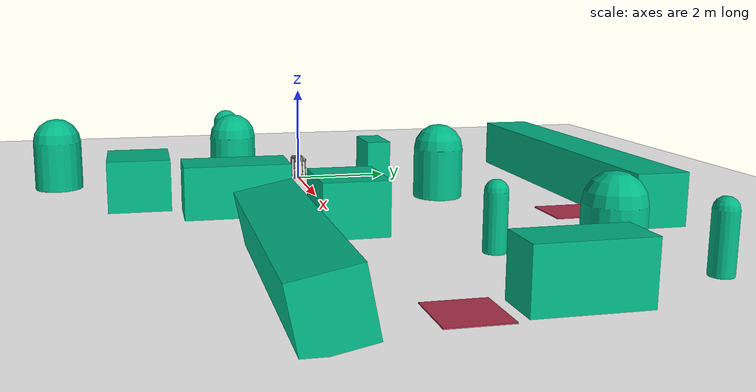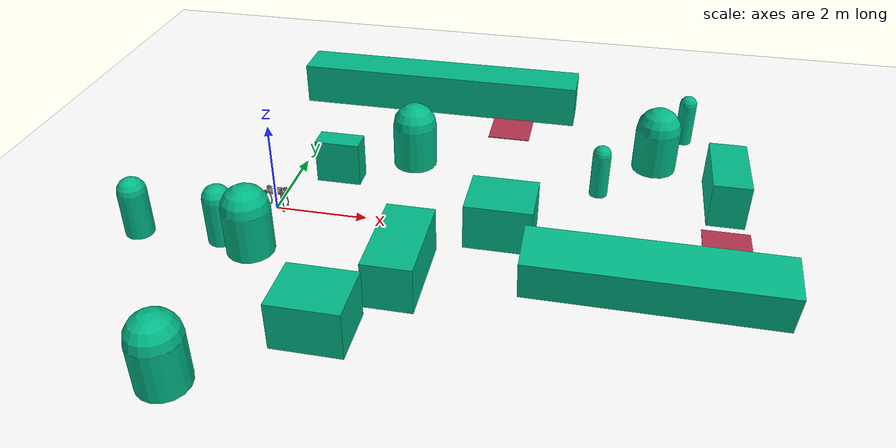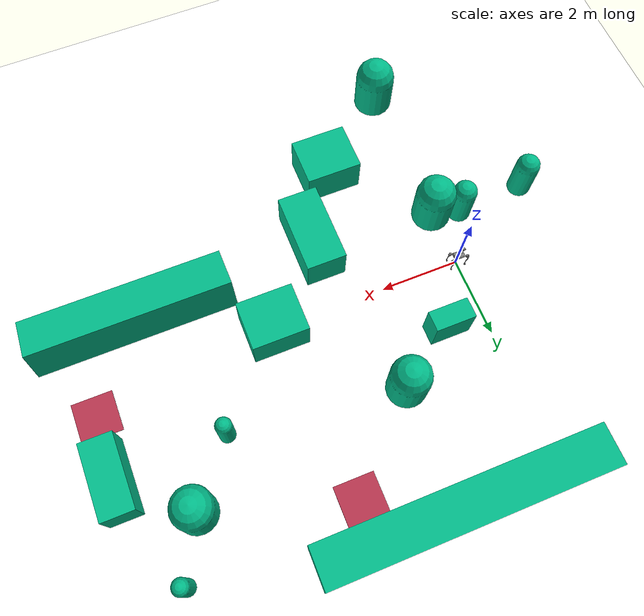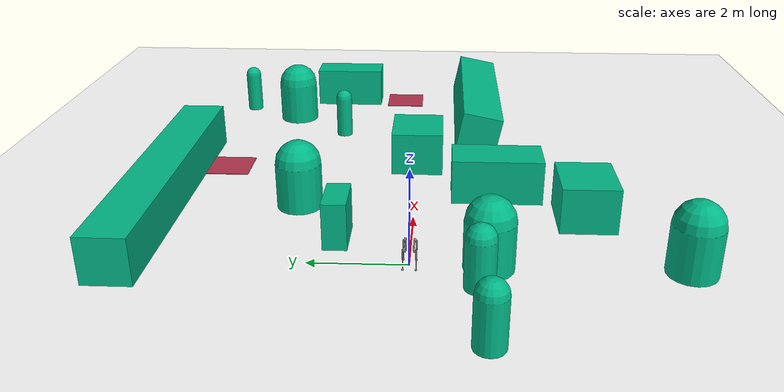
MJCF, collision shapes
<mujoco model="go1 scene">
  <include file="xmls/go1_mjx_rangefinder.xml"/>

  <statistic center="0 0 0.1" extent="0.8" meansize="0.04"/>

  <visual>
    <headlight diffuse=".7 .7 .7" ambient=".2 .2 .2" specular="1 1 1"/>
    <rgba force="1 0 0 1" rangefinder="1 1 0.1 0.3"/>
    <global azimuth="120" elevation="-20"/>
    <map force="0.01"/>
    <scale forcewidth="0.3" contactwidth="0.5" contactheight="0.2"/>
    <quality shadowsize="8192"/>
  </visual>

  <asset>
    <texture type="skybox" builtin="gradient" rgb1="1 1 1" rgb2="1 1 1" width="800" height="800"/>
    <texture type="2d" name="groundplane" builtin="checker" mark="edge" rgb1="1 1 1" rgb2="1 1 1" markrgb="0 0 0"
      width="300" height="300"/>
    <material name="groundplane" texture="groundplane" texuniform="true" texrepeat="5 5" reflectance="0"/>
    <material name="box_material" shininess="0.1" specular="0.1" roughness="0.7" />
  </asset>

  <worldbody>
    <geom name="floor" size="0 0 0.01" type="plane" material="groundplane" priority="1" friction="0.6" condim="3" contype="1" conaffinity="0"/>

    <body name="obstacle_body1" pos="2.5 2.5 0.5">
      <geom name="obstacle1" type="capsule" size="0.5 0.5" material="box_material" rgba="0.0 0.72 0.53 1.0" contype="0" conaffinity="0"/>
    </body>
    <body name="obstacle_body2" pos="1.0 1.5 0.5">
      <geom name="obstacle2" type="box" size="0.5 0.25 0.5" material="box_material" rgba="0.0 0.72 0.53 1.0" contype="0" conaffinity="0"/>
    </body>
    <body name="obstacle_body3" pos="0 -1.5 0.5">
      <geom name="obstacle3" type="capsule" size="0.5 0.5" material="box_material" rgba="0.0 0.72 0.53 1.0" contype="0" conaffinity="0"/>
    </body>

    <body name="obstacle_body_rand0" pos="4.9 -0.0 0.5">
      <geom name="obstacle_rand0" type="box" size="0.7 0.6 0.5" material="box_material" rgba="0.0 0.72 0.53 1.0" contype="0" conaffinity="0"/>
    </body>
    <body name="obstacle_body_rand30" pos="3.2 -1.8 0.5">
      <geom name="obstacle_rand30" type="box" size="0.5 1.0 0.5" material="box_material" rgba="0.0 0.72 0.53 1.0" contype="0" conaffinity="0"/>
    </body>
    <body name="obstacle_body_rand60" pos="2.1 -3.6 0.5">
      <geom name="obstacle_rand60" type="box" size="0.7 0.6 0.5" material="box_material" rgba="0.0 0.72 0.53 1.0" contype="0" conaffinity="0"/>
    </body>
    <body name="obstacle_body_rand90" pos="0.0 -5.3 0.5">
      <geom name="obstacle_rand90" type="capsule" size="0.5 0.5" material="box_material" rgba="0.0 0.72 0.53 1.0" contype="0" conaffinity="0"/>
    </body>
    <body name="obstacle_body_rand120" pos="-0.7 -1.3 0.5">
      <geom name="obstacle_rand120" type="capsule" size="0.3 0.5" material="box_material" rgba="0.0 0.72 0.53 1.0" contype="0" conaffinity="0"/>
    </body>
    <body name="obstacle_body_rand150" pos="-2.5 -1.4 0.5">
      <geom name="obstacle_rand150" type="capsule" size="0.3 0.5" material="box_material" rgba="0.0 0.72 0.53 1.0" contype="0" conaffinity="0"/>
    </body>

    <body name="obstacle_body_scatter0" pos="8.0 3.4 0.5">
      <geom name="obstacle_scatter0" type="capsule" size="0.5 0.5" material="box_material" rgba="0.0 0.72 0.53 1.0" contype="0" conaffinity="0"/>
    </body>
    <body name="obstacle_body_scatter2" pos="9.5 2.1 0.5">
      <geom name="obstacle_scatter2" type="box" size="0.4 0.9 0.5" material="box_material" rgba="0.0 0.72 0.53 1.0" contype="0" conaffinity="0"/>
    </body>
    <body name="obstacle_body_scatter3" pos="6.8 2.0 0.5">
      <geom name="obstacle_scatter3" type="capsule" size="0.2 0.5" material="box_material" rgba="0.0 0.72 0.53 1.0" contype="0" conaffinity="0"/>
    </body>
    <body name="obstacle_body_scatter4" pos="8.7 4.8 0.5">
      <geom name="obstacle_scatter4" type="capsule" size="0.2 0.5" material="box_material" rgba="0.0 0.72 0.53 1.0" contype="0" conaffinity="0"/>
    </body>

    <body name="outer_wall_body1" pos="2.5 5.5 0.5">
      <geom name="outer_wall1" type="box" size="3.5 0.5 0.5" material="box_material" rgba="0.0 0.72 0.53 1.0" contype="0" conaffinity="0"/>
    </body>
    <body name="outer_wall_body2" pos="8 -1.5 0.5">
      <geom name="outer_wall2" type="box" size="2.5 0.5 0.5" material="box_material" rgba="0.0 0.72 0.53 1.0" euler="0.2 0 0" contype="0" conaffinity="0"/>
    </body>
    <body name="goal_box1_body" pos="4.5 4.5 0.01">
      <geom name="goal_box1" type="box" size="0.5 0.5 0.01" material="box_material" rgba="0.7 0.2 0.3 1.0" contype="0" conaffinity="0"/>
    </body>
    <body name="goal_box2_body" pos="9.5 0.5 0.01">
      <geom name="goal_box2" type="box" size="0.5 0.5 0.01" material="box_material" rgba="0.7 0.2 0.3 1.0" contype="0" conaffinity="0"/>
    </body>
  </worldbody>

  <keyframe>
    <key name="home" qpos="
    0 0 0.278
    1 0 0 0
    0.1 0.9 -1.8
    -0.1 0.9 -1.8
    0.1 0.9 -1.8
    -0.1 0.9 -1.8"
      ctrl="0.1 0.9 -1.8 -0.1 0.9 -1.8 0.1 0.9 -1.8 -0.1 0.9 -1.8"/>
    <key name="home_higher" qpos="0 0 0.31 1 0 0 0 0 0.82 -1.63 0 0.82 -1.63 0 0.82 -1.63 0 0.82 -1.63"
      ctrl="0 0.82 -1.63 0 0.82 -1.63 0 0.82 -1.63 0 0.82 -1.63"/>
    <key name="pre_recovery"
      qpos="-0.0318481 -0.000215369 0.0579031 1 -2.70738e-05 6.06169e-05 0.000231261 -0.352275 1.18554 -2.80738 0.360892 1.1806 -2.80281 -0.381197 1.16812 -2.79123 0.391054 1.1622 -2.78576"
      ctrl="-0.352275 1.18554 -2.80738 0.360892 1.1806 -2.80281 -0.381197 1.16812 -2.79123 0.391054 1.1622 -2.78576"/>
    <key name="footstand"
      qpos="0 0 0.54 0.8 0 -0.8 0 0 0.82 -1.6 0 0.82 -1.68 0 1.82 -1.16 0.0 1.82 -1.16"
      ctrl="0 0.82 -1.6 0 0.82 -1.68 0 1.82 -1.16 0.0 1.82 -1.16"/>
    <key name="handstand"
      qpos="0 0 0.54 0.8 0 0.8 0 0 -0.686 -1.16 0 -0.686 -1.16 0 1.7 -1.853 0 1.7 -1.853"
      ctrl="0 -0.686 -1.16 0 -0.686 -1.16 0 1.7 -1.853 0 1.7 -1.853"/>
  </keyframe>
</mujoco>

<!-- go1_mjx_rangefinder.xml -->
<mujoco model="go1">
  <compiler angle="radian" meshdir="xmls/assets" autolimits="true"/>

  <option iterations="1" ls_iterations="5" timestep="0.004" integrator="Euler">
    <flag eulerdamp="disable"/>
  </option>

  <default>
    <default class="go1">
      <geom condim="1" contype="0" conaffinity="1"/>
      <joint axis="0 1 0" armature="0.005" damping="0.5"/>
      <position forcerange="-23.7 23.7" inheritrange="1" kp="35"/>
      <default class="abduction">
        <joint axis="1 0 0" range="-0.863 0.863" frictionloss="0.3"/>
      </default>
      <default class="hip">
        <joint range="-0.686 4.501" frictionloss="0.3"/>
      </default>
      <default class="knee">
        <joint range="-2.818 -0.888" frictionloss="1.0"/>
        <position forcerange="-35.55 35.55"/>
      </default>
      <default class="visual">
        <geom type="mesh" contype="0" conaffinity="0" group="2" material="dark"/>
      </default>
      <default class="collision">
        <geom group="3" type="capsule"/>
        <default class="hip_left1">
          <geom size="0.046 0.02" pos="0 0.045 0" quat="1 1 0 0" type="cylinder"/>
        </default>
        <default class="hip_left2">
          <geom size="0.031 0.02" pos="0 0.065 0" quat="1 1 0 0" type="cylinder"/>
        </default>
        <default class="hip_left3">
          <geom size="0.046 0.02" quat="1 1 0 0" type="cylinder"/>
        </default>
        <default class="hip_right1">
          <geom size="0.046 0.02" pos="0 -0.045 0" quat="1 1 0 0" type="cylinder"/>
        </default>
        <default class="hip_right2">
          <geom size="0.031 0.02" pos="0 -0.065 0" quat="1 1 0 0" type="cylinder"/>
        </default>
        <default class="hip_right3">
          <geom size="0.046 0.02" quat="1 1 0 0" type="cylinder"/>
        </default>
        <default class="thigh1">
          <geom size="0.015" fromto="-0.02 0 0 -0.02 0 -0.16"/>
        </default>
        <default class="thigh2">
          <geom size="0.015" fromto="0 0 0 -0.02 0 -0.1"/>
        </default>
        <default class="thigh3">
          <geom size="0.015" fromto="-0.02 0 -0.16 0 0 -0.2"/>
        </default>
        <default class="calf1">
          <geom size="0.01" fromto="0 0 0 0.02 0 -0.13"/>
        </default>
        <default class="calf2">
          <geom size="0.01" fromto="0.02 0 -0.13 0 0 -0.2"/>
        </default>
        <default class="foot">
          <geom type="sphere" size="0.023" pos="0 0 -0.213" solimp="0.9 .95 0.023" condim="3"/>
        </default>
      </default>
    </default>
  </default>

  <asset>
    <material name="dark" rgba="0.2 0.2 0.2 1"/>
    <mesh class="go1" file="trunk.stl"/>
    <mesh class="go1" file="hip.stl"/>
    <mesh class="go1" file="thigh_mirror.stl"/>
    <mesh class="go1" file="calf.stl"/>
    <mesh class="go1" file="thigh.stl"/>
  </asset>

  <worldbody>
    <light name="spotlight" mode="targetbodycom" target="trunk" pos="3 0 4"/>
    <body name="trunk" pos="0 0 0.445" childclass="go1">
      <camera name="track" pos="0.846 -1.3 0.316" xyaxes="0.866 0.500 0.000 -0.171 0.296 0.940" mode="trackcom"/>
      <camera name="top" pos="-1 0 1" xyaxes="0 -1 0 0.7 0 0.7" mode="trackcom"/>
      <camera name="side" pos="0 -1 .3" xyaxes="1 0 0 0 1 2" mode="trackcom"/>
      <camera name="back" pos="-1 0 .3" xyaxes="0 -1 0 1 0 2" mode="trackcom"/>
      <camera name="robot_cam" pos="0.2 0 0.32" euler="1.57 3.14 0" mode="targetbody" target="head_dummy"/>
      <site name="head" pos="0.3 0 0" rgba="1 0 0 1" size="0.02" group="5"/>
      <inertial pos="0.0223 0.002 -0.0005" quat="-0.00342088 0.705204 0.000106698 0.708996" mass="5.204"
        diaginertia="0.0716565 0.0630105 0.0168101"/>
      <freejoint/>
      <geom class="visual" mesh="trunk"/>
      <geom class="collision" quat="1 0 1 0" pos="0 -0.04 0" size="0.058 0.125" type="cylinder"/>
      <geom class="collision" quat="1 0 1 0" pos="0 +0.04 0" size="0.058 0.125" type="cylinder"/>
      <site name="imu" pos="-0.01592 -0.06659 -0.00617" group="5"/>
      <body name="head_dummy" pos="0.5 0.0 0.12">
      </body>

      <site name="lidar_-60" type="box" size="0.1 0.1 0.1" pos="0 0 0.3" rgba="0 1 0 0" zaxis="0.5 -0.866 0" group="5"/>
      <site name="lidar_-59" type="box" size="0.1 0.1 0.1" pos="0 0 0.3" rgba="0 1 0 0" zaxis="0.515 -0.857 0" group="5"/>
      <site name="lidar_-58" type="box" size="0.1 0.1 0.1" pos="0 0 0.3" rgba="0 1 0 0" zaxis="0.53 -0.848 0" group="5"/>
      <site name="lidar_-57" type="box" size="0.1 0.1 0.1" pos="0 0 0.3" rgba="0 1 0 0" zaxis="0.545 -0.839 0" group="5"/>
      <site name="lidar_-56" type="box" size="0.1 0.1 0.1" pos="0 0 0.3" rgba="0 1 0 0" zaxis="0.559 -0.829 0" group="5"/>
      <site name="lidar_-55" type="box" size="0.1 0.1 0.1" pos="0 0 0.3" rgba="0 1 0 0" zaxis="0.574 -0.819 0" group="5"/>
      <site name="lidar_-54" type="box" size="0.1 0.1 0.1" pos="0 0 0.3" rgba="0 1 0 0" zaxis="0.588 -0.809 0" group="5"/>
      <site name="lidar_-53" type="box" size="0.1 0.1 0.1" pos="0 0 0.3" rgba="0 1 0 0" zaxis="0.602 -0.799 0" group="5"/>
      <site name="lidar_-52" type="box" size="0.1 0.1 0.1" pos="0 0 0.3" rgba="0 1 0 0" zaxis="0.616 -0.788 0" group="5"/>
      <site name="lidar_-51" type="box" size="0.1 0.1 0.1" pos="0 0 0.3" rgba="0 1 0 0" zaxis="0.629 -0.777 0" group="5"/>
      <site name="lidar_-50" type="box" size="0.1 0.1 0.1" pos="0 0 0.3" rgba="0 1 0 0" zaxis="0.643 -0.766 0" group="5"/>
      <site name="lidar_-49" type="box" size="0.1 0.1 0.1" pos="0 0 0.3" rgba="0 1 0 0" zaxis="0.656 -0.755 0" group="5"/>
      <site name="lidar_-48" type="box" size="0.1 0.1 0.1" pos="0 0 0.3" rgba="0 1 0 0" zaxis="0.669 -0.743 0" group="5"/>
      <site name="lidar_-47" type="box" size="0.1 0.1 0.1" pos="0 0 0.3" rgba="0 1 0 0" zaxis="0.682 -0.731 0" group="5"/>
      <site name="lidar_-46" type="box" size="0.1 0.1 0.1" pos="0 0 0.3" rgba="0 1 0 0" zaxis="0.695 -0.719 0" group="5"/>
      <site name="lidar_-45" type="box" size="0.1 0.1 0.1" pos="0 0 0.3" rgba="0 1 0 0" zaxis="0.707 -0.707 0" group="5"/>
      <site name="lidar_-44" type="box" size="0.1 0.1 0.1" pos="0 0 0.3" rgba="0 1 0 0" zaxis="0.719 -0.695 0" group="5"/>
      <site name="lidar_-43" type="box" size="0.1 0.1 0.1" pos="0 0 0.3" rgba="0 1 0 0" zaxis="0.731 -0.682 0" group="5"/>
      <site name="lidar_-42" type="box" size="0.1 0.1 0.1" pos="0 0 0.3" rgba="0 1 0 0" zaxis="0.743 -0.669 0" group="5"/>
      <site name="lidar_-41" type="box" size="0.1 0.1 0.1" pos="0 0 0.3" rgba="0 1 0 0" zaxis="0.755 -0.656 0" group="5"/>
      <site name="lidar_-40" type="box" size="0.1 0.1 0.1" pos="0 0 0.3" rgba="0 1 0 0" zaxis="0.766 -0.643 0" group="5"/>
      <site name="lidar_-39" type="box" size="0.1 0.1 0.1" pos="0 0 0.3" rgba="0 1 0 0" zaxis="0.777 -0.629 0" group="5"/>
      <site name="lidar_-38" type="box" size="0.1 0.1 0.1" pos="0 0 0.3" rgba="0 1 0 0" zaxis="0.788 -0.616 0" group="5"/>
      <site name="lidar_-37" type="box" size="0.1 0.1 0.1" pos="0 0 0.3" rgba="0 1 0 0" zaxis="0.799 -0.602 0" group="5"/>
      <site name="lidar_-36" type="box" size="0.1 0.1 0.1" pos="0 0 0.3" rgba="0 1 0 0" zaxis="0.809 -0.588 0" group="5"/>
      <site name="lidar_-35" type="box" size="0.1 0.1 0.1" pos="0 0 0.3" rgba="0 1 0 0" zaxis="0.819 -0.574 0" group="5"/>
      <site name="lidar_-34" type="box" size="0.1 0.1 0.1" pos="0 0 0.3" rgba="0 1 0 0" zaxis="0.829 -0.559 0" group="5"/>
      <site name="lidar_-33" type="box" size="0.1 0.1 0.1" pos="0 0 0.3" rgba="0 1 0 0" zaxis="0.839 -0.545 0" group="5"/>
      <site name="lidar_-32" type="box" size="0.1 0.1 0.1" pos="0 0 0.3" rgba="0 1 0 0" zaxis="0.848 -0.53 0" group="5"/>
      <site name="lidar_-31" type="box" size="0.1 0.1 0.1" pos="0 0 0.3" rgba="0 1 0 0" zaxis="0.857 -0.515 0" group="5"/>
      <site name="lidar_-30" type="box" size="0.1 0.1 0.1" pos="0 0 0.3" rgba="0 1 0 0" zaxis="0.866 -0.5 0" group="5"/>
      <site name="lidar_-29" type="box" size="0.1 0.1 0.1" pos="0 0 0.3" rgba="0 1 0 0" zaxis="0.875 -0.485 0" group="5"/>
      <site name="lidar_-28" type="box" size="0.1 0.1 0.1" pos="0 0 0.3" rgba="0 1 0 0" zaxis="0.883 -0.469 0" group="5"/>
      <site name="lidar_-27" type="box" size="0.1 0.1 0.1" pos="0 0 0.3" rgba="0 1 0 0" zaxis="0.891 -0.454 0" group="5"/>
      <site name="lidar_-26" type="box" size="0.1 0.1 0.1" pos="0 0 0.3" rgba="0 1 0 0" zaxis="0.899 -0.438 0" group="5"/>
      <site name="lidar_-25" type="box" size="0.1 0.1 0.1" pos="0 0 0.3" rgba="0 1 0 0" zaxis="0.906 -0.423 0" group="5"/>
      <site name="lidar_-24" type="box" size="0.1 0.1 0.1" pos="0 0 0.3" rgba="0 1 0 0" zaxis="0.914 -0.407 0" group="5"/>
      <site name="lidar_-23" type="box" size="0.1 0.1 0.1" pos="0 0 0.3" rgba="0 1 0 0" zaxis="0.921 -0.391 0" group="5"/>
      <site name="lidar_-22" type="box" size="0.1 0.1 0.1" pos="0 0 0.3" rgba="0 1 0 0" zaxis="0.927 -0.375 0" group="5"/>
      <site name="lidar_-21" type="box" size="0.1 0.1 0.1" pos="0 0 0.3" rgba="0 1 0 0" zaxis="0.934 -0.358 0" group="5"/>
      <site name="lidar_-20" type="box" size="0.1 0.1 0.1" pos="0 0 0.3" rgba="0 1 0 0" zaxis="0.94 -0.342 0" group="5"/>
      <site name="lidar_-19" type="box" size="0.1 0.1 0.1" pos="0 0 0.3" rgba="0 1 0 0" zaxis="0.946 -0.326 0" group="5"/>
      <site name="lidar_-18" type="box" size="0.1 0.1 0.1" pos="0 0 0.3" rgba="0 1 0 0" zaxis="0.951 -0.309 0" group="5"/>
      <site name="lidar_-17" type="box" size="0.1 0.1 0.1" pos="0 0 0.3" rgba="0 1 0 0" zaxis="0.956 -0.292 0" group="5"/>
      <site name="lidar_-16" type="box" size="0.1 0.1 0.1" pos="0 0 0.3" rgba="0 1 0 0" zaxis="0.961 -0.276 0" group="5"/>
      <site name="lidar_-15" type="box" size="0.1 0.1 0.1" pos="0 0 0.3" rgba="0 1 0 0" zaxis="0.966 -0.259 0" group="5"/>
      <site name="lidar_-14" type="box" size="0.1 0.1 0.1" pos="0 0 0.3" rgba="0 1 0 0" zaxis="0.97 -0.242 0" group="5"/>
      <site name="lidar_-13" type="box" size="0.1 0.1 0.1" pos="0 0 0.3" rgba="0 1 0 0" zaxis="0.974 -0.225 0" group="5"/>
      <site name="lidar_-12" type="box" size="0.1 0.1 0.1" pos="0 0 0.3" rgba="0 1 0 0" zaxis="0.978 -0.208 0" group="5"/>
      <site name="lidar_-11" type="box" size="0.1 0.1 0.1" pos="0 0 0.3" rgba="0 1 0 0" zaxis="0.982 -0.191 0" group="5"/>
      <site name="lidar_-10" type="box" size="0.1 0.1 0.1" pos="0 0 0.3" rgba="0 1 0 0" zaxis="0.985 -0.174 0" group="5"/>
      <site name="lidar_-9" type="box" size="0.1 0.1 0.1" pos="0 0 0.3" rgba="0 1 0 0" zaxis="0.988 -0.156 0" group="5"/>
      <site name="lidar_-8" type="box" size="0.1 0.1 0.1" pos="0 0 0.3" rgba="0 1 0 0" zaxis="0.99 -0.139 0" group="5"/>
      <site name="lidar_-7" type="box" size="0.1 0.1 0.1" pos="0 0 0.3" rgba="0 1 0 0" zaxis="0.993 -0.122 0" group="5"/>
      <site name="lidar_-6" type="box" size="0.1 0.1 0.1" pos="0 0 0.3" rgba="0 1 0 0" zaxis="0.995 -0.105 0" group="5"/>
      <site name="lidar_-5" type="box" size="0.1 0.1 0.1" pos="0 0 0.3" rgba="0 1 0 0" zaxis="0.996 -0.087 0" group="5"/>
      <site name="lidar_-4" type="box" size="0.1 0.1 0.1" pos="0 0 0.3" rgba="0 1 0 0" zaxis="0.998 -0.07 0" group="5"/>
      <site name="lidar_-3" type="box" size="0.1 0.1 0.1" pos="0 0 0.3" rgba="0 1 0 0" zaxis="0.999 -0.052 0" group="5"/>
      <site name="lidar_-2" type="box" size="0.1 0.1 0.1" pos="0 0 0.3" rgba="0 1 0 0" zaxis="0.999 -0.035 0" group="5"/>
      <site name="lidar_-1" type="box" size="0.1 0.1 0.1" pos="0 0 0.3" rgba="0 1 0 0" zaxis="1.0 -0.017 0" group="5"/>
      <site name="lidar_0" type="box" size="0.1 0.1 0.1" pos="0 0 0.3" rgba="0 1 0 0" zaxis="1.0 0.0 0" group="5"/>
      <site name="lidar_1" type="box" size="0.1 0.1 0.1" pos="0 0 0.3" rgba="0 1 0 0" zaxis="1.0 0.017 0" group="5"/>
      <site name="lidar_2" type="box" size="0.1 0.1 0.1" pos="0 0 0.3" rgba="0 1 0 0" zaxis="0.999 0.035 0" group="5"/>
      <site name="lidar_3" type="box" size="0.1 0.1 0.1" pos="0 0 0.3" rgba="0 1 0 0" zaxis="0.999 0.052 0" group="5"/>
      <site name="lidar_4" type="box" size="0.1 0.1 0.1" pos="0 0 0.3" rgba="0 1 0 0" zaxis="0.998 0.07 0" group="5"/>
      <site name="lidar_5" type="box" size="0.1 0.1 0.1" pos="0 0 0.3" rgba="0 1 0 0" zaxis="0.996 0.087 0" group="5"/>
      <site name="lidar_6" type="box" size="0.1 0.1 0.1" pos="0 0 0.3" rgba="0 1 0 0" zaxis="0.995 0.105 0" group="5"/>
      <site name="lidar_7" type="box" size="0.1 0.1 0.1" pos="0 0 0.3" rgba="0 1 0 0" zaxis="0.993 0.122 0" group="5"/>
      <site name="lidar_8" type="box" size="0.1 0.1 0.1" pos="0 0 0.3" rgba="0 1 0 0" zaxis="0.99 0.139 0" group="5"/>
      <site name="lidar_9" type="box" size="0.1 0.1 0.1" pos="0 0 0.3" rgba="0 1 0 0" zaxis="0.988 0.156 0" group="5"/>
      <site name="lidar_10" type="box" size="0.1 0.1 0.1" pos="0 0 0.3" rgba="0 1 0 0" zaxis="0.985 0.174 0" group="5"/>
      <site name="lidar_11" type="box" size="0.1 0.1 0.1" pos="0 0 0.3" rgba="0 1 0 0" zaxis="0.982 0.191 0" group="5"/>
      <site name="lidar_12" type="box" size="0.1 0.1 0.1" pos="0 0 0.3" rgba="0 1 0 0" zaxis="0.978 0.208 0" group="5"/>
      <site name="lidar_13" type="box" size="0.1 0.1 0.1" pos="0 0 0.3" rgba="0 1 0 0" zaxis="0.974 0.225 0" group="5"/>
      <site name="lidar_14" type="box" size="0.1 0.1 0.1" pos="0 0 0.3" rgba="0 1 0 0" zaxis="0.97 0.242 0" group="5"/>
      <site name="lidar_15" type="box" size="0.1 0.1 0.1" pos="0 0 0.3" rgba="0 1 0 0" zaxis="0.966 0.259 0" group="5"/>
      <site name="lidar_16" type="box" size="0.1 0.1 0.1" pos="0 0 0.3" rgba="0 1 0 0" zaxis="0.961 0.276 0" group="5"/>
      <site name="lidar_17" type="box" size="0.1 0.1 0.1" pos="0 0 0.3" rgba="0 1 0 0" zaxis="0.956 0.292 0" group="5"/>
      <site name="lidar_18" type="box" size="0.1 0.1 0.1" pos="0 0 0.3" rgba="0 1 0 0" zaxis="0.951 0.309 0" group="5"/>
      <site name="lidar_19" type="box" size="0.1 0.1 0.1" pos="0 0 0.3" rgba="0 1 0 0" zaxis="0.946 0.326 0" group="5"/>
      <site name="lidar_20" type="box" size="0.1 0.1 0.1" pos="0 0 0.3" rgba="0 1 0 0" zaxis="0.94 0.342 0" group="5"/>
      <site name="lidar_21" type="box" size="0.1 0.1 0.1" pos="0 0 0.3" rgba="0 1 0 0" zaxis="0.934 0.358 0" group="5"/>
      <site name="lidar_22" type="box" size="0.1 0.1 0.1" pos="0 0 0.3" rgba="0 1 0 0" zaxis="0.927 0.375 0" group="5"/>
      <site name="lidar_23" type="box" size="0.1 0.1 0.1" pos="0 0 0.3" rgba="0 1 0 0" zaxis="0.921 0.391 0" group="5"/>
      <site name="lidar_24" type="box" size="0.1 0.1 0.1" pos="0 0 0.3" rgba="0 1 0 0" zaxis="0.914 0.407 0" group="5"/>
      <site name="lidar_25" type="box" size="0.1 0.1 0.1" pos="0 0 0.3" rgba="0 1 0 0" zaxis="0.906 0.423 0" group="5"/>
      <site name="lidar_26" type="box" size="0.1 0.1 0.1" pos="0 0 0.3" rgba="0 1 0 0" zaxis="0.899 0.438 0" group="5"/>
      <site name="lidar_27" type="box" size="0.1 0.1 0.1" pos="0 0 0.3" rgba="0 1 0 0" zaxis="0.891 0.454 0" group="5"/>
      <site name="lidar_28" type="box" size="0.1 0.1 0.1" pos="0 0 0.3" rgba="0 1 0 0" zaxis="0.883 0.469 0" group="5"/>
      <site name="lidar_29" type="box" size="0.1 0.1 0.1" pos="0 0 0.3" rgba="0 1 0 0" zaxis="0.875 0.485 0" group="5"/>
      <site name="lidar_30" type="box" size="0.1 0.1 0.1" pos="0 0 0.3" rgba="0 1 0 0" zaxis="0.866 0.5 0" group="5"/>
      <site name="lidar_31" type="box" size="0.1 0.1 0.1" pos="0 0 0.3" rgba="0 1 0 0" zaxis="0.857 0.515 0" group="5"/>
      <site name="lidar_32" type="box" size="0.1 0.1 0.1" pos="0 0 0.3" rgba="0 1 0 0" zaxis="0.848 0.53 0" group="5"/>
      <site name="lidar_33" type="box" size="0.1 0.1 0.1" pos="0 0 0.3" rgba="0 1 0 0" zaxis="0.839 0.545 0" group="5"/>
      <site name="lidar_34" type="box" size="0.1 0.1 0.1" pos="0 0 0.3" rgba="0 1 0 0" zaxis="0.829 0.559 0" group="5"/>
      <site name="lidar_35" type="box" size="0.1 0.1 0.1" pos="0 0 0.3" rgba="0 1 0 0" zaxis="0.819 0.574 0" group="5"/>
      <site name="lidar_36" type="box" size="0.1 0.1 0.1" pos="0 0 0.3" rgba="0 1 0 0" zaxis="0.809 0.588 0" group="5"/>
      <site name="lidar_37" type="box" size="0.1 0.1 0.1" pos="0 0 0.3" rgba="0 1 0 0" zaxis="0.799 0.602 0" group="5"/>
      <site name="lidar_38" type="box" size="0.1 0.1 0.1" pos="0 0 0.3" rgba="0 1 0 0" zaxis="0.788 0.616 0" group="5"/>
      <site name="lidar_39" type="box" size="0.1 0.1 0.1" pos="0 0 0.3" rgba="0 1 0 0" zaxis="0.777 0.629 0" group="5"/>
      <site name="lidar_40" type="box" size="0.1 0.1 0.1" pos="0 0 0.3" rgba="0 1 0 0" zaxis="0.766 0.643 0" group="5"/>
      <site name="lidar_41" type="box" size="0.1 0.1 0.1" pos="0 0 0.3" rgba="0 1 0 0" zaxis="0.755 0.656 0" group="5"/>
      <site name="lidar_42" type="box" size="0.1 0.1 0.1" pos="0 0 0.3" rgba="0 1 0 0" zaxis="0.743 0.669 0" group="5"/>
      <site name="lidar_43" type="box" size="0.1 0.1 0.1" pos="0 0 0.3" rgba="0 1 0 0" zaxis="0.731 0.682 0" group="5"/>
      <site name="lidar_44" type="box" size="0.1 0.1 0.1" pos="0 0 0.3" rgba="0 1 0 0" zaxis="0.719 0.695 0" group="5"/>
      <site name="lidar_45" type="box" size="0.1 0.1 0.1" pos="0 0 0.3" rgba="0 1 0 0" zaxis="0.707 0.707 0" group="5"/>
      <site name="lidar_46" type="box" size="0.1 0.1 0.1" pos="0 0 0.3" rgba="0 1 0 0" zaxis="0.695 0.719 0" group="5"/>
      <site name="lidar_47" type="box" size="0.1 0.1 0.1" pos="0 0 0.3" rgba="0 1 0 0" zaxis="0.682 0.731 0" group="5"/>
      <site name="lidar_48" type="box" size="0.1 0.1 0.1" pos="0 0 0.3" rgba="0 1 0 0" zaxis="0.669 0.743 0" group="5"/>
      <site name="lidar_49" type="box" size="0.1 0.1 0.1" pos="0 0 0.3" rgba="0 1 0 0" zaxis="0.656 0.755 0" group="5"/>
      <site name="lidar_50" type="box" size="0.1 0.1 0.1" pos="0 0 0.3" rgba="0 1 0 0" zaxis="0.643 0.766 0" group="5"/>
      <site name="lidar_51" type="box" size="0.1 0.1 0.1" pos="0 0 0.3" rgba="0 1 0 0" zaxis="0.629 0.777 0" group="5"/>
      <site name="lidar_52" type="box" size="0.1 0.1 0.1" pos="0 0 0.3" rgba="0 1 0 0" zaxis="0.616 0.788 0" group="5"/>
      <site name="lidar_53" type="box" size="0.1 0.1 0.1" pos="0 0 0.3" rgba="0 1 0 0" zaxis="0.602 0.799 0" group="5"/>
      <site name="lidar_54" type="box" size="0.1 0.1 0.1" pos="0 0 0.3" rgba="0 1 0 0" zaxis="0.588 0.809 0" group="5"/>
      <site name="lidar_55" type="box" size="0.1 0.1 0.1" pos="0 0 0.3" rgba="0 1 0 0" zaxis="0.574 0.819 0" group="5"/>
      <site name="lidar_56" type="box" size="0.1 0.1 0.1" pos="0 0 0.3" rgba="0 1 0 0" zaxis="0.559 0.829 0" group="5"/>
      <site name="lidar_57" type="box" size="0.1 0.1 0.1" pos="0 0 0.3" rgba="0 1 0 0" zaxis="0.545 0.839 0" group="5"/>
      <site name="lidar_58" type="box" size="0.1 0.1 0.1" pos="0 0 0.3" rgba="0 1 0 0" zaxis="0.53 0.848 0" group="5"/>
      <site name="lidar_59" type="box" size="0.1 0.1 0.1" pos="0 0 0.3" rgba="0 1 0 0" zaxis="0.515 0.857 0" group="5"/>
      <site name="lidar_60" type="box" size="0.1 0.1 0.1" pos="0 0 0.3" rgba="0 1 0 0" zaxis="0.5 0.866 0" group="5"/>
      <body name="FR_hip" pos="0.1881 -0.04675 0">
        <inertial pos="-0.0049166 0.00762615 -8.865e-05" quat="0.507341 0.514169 0.495027 0.482891" mass="0.68"
          diaginertia="0.000734064 0.000468438 0.000398719"/>
        <joint class="abduction" name="FR_hip_joint"/>
        <geom class="visual" mesh="hip" quat="1 0 0 0"/>
        <geom name="fr_hip" class="hip_right1"/>
        <body name="FR_thigh" pos="0 -0.08 0">
          <inertial pos="-0.00304722 0.019315 -0.0305004" quat="0.65243 -0.0272313 0.0775126 0.753383" mass="1.009"
            diaginertia="0.00478717 0.00460903 0.000709268"/>
          <joint class="hip" name="FR_thigh_joint"/>
          <geom class="visual" mesh="thigh_mirror"/>
          <geom name="fr_thigh1" class="thigh1"/>
          <geom name="fr_thigh2" class="thigh2"/>
          <geom name="fr_thigh3" class="thigh3"/>
          <body name="FR_calf" pos="0 0 -0.213">
            <inertial pos="0.00429862 0.000976676 -0.146197" quat="0.691246 0.00357467 0.00511118 0.722592"
              mass="0.195862" diaginertia="0.00149767 0.00148468 3.58427e-05"/>
            <joint class="knee" name="FR_calf_joint"/>
            <geom class="visual" mesh="calf"/>
            <geom name="fr_calf1" class="calf1"/>
            <geom name="fr_calf2" class="calf2"/>
            <geom name="FR" class="foot"/>
            <site name="FR" pos="0 0 -0.213" type="sphere" size="0.023" group="5"/>
          </body>
        </body>
      </body>
      <body name="FL_hip" pos="0.1881 0.04675 0">
        <inertial pos="-0.0049166 -0.00762615 -8.865e-05" quat="0.482891 0.495027 0.514169 0.507341" mass="0.68"
          diaginertia="0.000734064 0.000468438 0.000398719"/>
        <joint class="abduction" name="FL_hip_joint"/>
        <geom class="visual" mesh="hip"/>
        <geom name="fl_hip" class="hip_left1"/>
        <body name="FL_thigh" pos="0 0.08 0">
          <inertial pos="-0.00304722 -0.019315 -0.0305004" quat="0.753383 0.0775126 -0.0272313 0.65243" mass="1.009"
            diaginertia="0.00478717 0.00460903 0.000709268"/>
          <joint class="hip" name="FL_thigh_joint"/>
          <geom class="visual" mesh="thigh"/>
          <geom name="fl_thigh1" class="thigh1"/>
          <geom name="fl_thigh2" class="thigh2"/>
          <geom name="fl_thigh3" class="thigh3"/>
          <body name="FL_calf" pos="0 0 -0.213">
            <inertial pos="0.00429862 0.000976676 -0.146197" quat="0.691246 0.00357467 0.00511118 0.722592"
              mass="0.195862" diaginertia="0.00149767 0.00148468 3.58427e-05"/>
            <joint class="knee" name="FL_calf_joint"/>
            <geom class="visual" mesh="calf"/>
            <geom name="fl_calf1" class="calf1"/>
            <geom name="fl_calf2" class="calf2"/>
            <geom name="FL" class="foot"/>
            <site name="FL" pos="0 0 -0.213" type="sphere" size="0.023" group="5"/>
          </body>
        </body>
      </body>
      <body name="RR_hip" pos="-0.1881 -0.04675 0">
        <inertial pos="0.0049166 0.00762615 -8.865e-05" quat="0.495027 0.482891 0.507341 0.514169" mass="0.68"
          diaginertia="0.000734064 0.000468438 0.000398719"/>
        <joint class="abduction" name="RR_hip_joint"/>
        <geom class="visual" quat="0 0 0 -1" mesh="hip"/>
        <geom name="rr_hip" class="hip_right1"/>
        <body name="RR_thigh" pos="0 -0.08 0">
          <inertial pos="-0.00304722 0.019315 -0.0305004" quat="0.65243 -0.0272313 0.0775126 0.753383" mass="1.009"
            diaginertia="0.00478717 0.00460903 0.000709268"/>
          <joint class="hip" name="RR_thigh_joint"/>
          <geom class="visual" mesh="thigh_mirror"/>
          <geom name="rr_thigh1" class="thigh1"/>
          <geom name="rr_thigh2" class="thigh2"/>
          <geom name="rr_thigh3" class="thigh3"/>
          <body name="RR_calf" pos="0 0 -0.213">
            <inertial pos="0.00429862 0.000976676 -0.146197" quat="0.691246 0.00357467 0.00511118 0.722592"
              mass="0.195862" diaginertia="0.00149767 0.00148468 3.58427e-05"/>
            <joint class="knee" name="RR_calf_joint"/>
            <geom class="visual" mesh="calf"/>
            <geom name="rr_calf1" class="calf1"/>
            <geom name="rr_calf2" class="calf2"/>
            <geom name="RR" class="foot"/>
            <site name="RR" pos="0 0 -0.213" type="sphere" size="0.023" group="5"/>
          </body>
        </body>
      </body>
      <body name="RL_hip" pos="-0.1881 0.04675 0">
        <inertial pos="0.0049166 -0.00762615 -8.865e-05" quat="0.514169 0.507341 0.482891 0.495027" mass="0.68"
          diaginertia="0.000734064 0.000468438 0.000398719"/>
        <joint class="abduction" name="RL_hip_joint"/>
        <geom class="visual" quat="0 0 1 0" mesh="hip"/>
        <geom name="rl_hip" class="hip_left1"/>
        <body name="RL_thigh" pos="0 0.08 0">
          <inertial pos="-0.00304722 -0.019315 -0.0305004" quat="0.753383 0.0775126 -0.0272313 0.65243" mass="1.009"
            diaginertia="0.00478717 0.00460903 0.000709268"/>
          <joint class="hip" name="RL_thigh_joint"/>
          <geom class="visual" mesh="thigh"/>
          <geom name="rl_thigh1" class="thigh1"/>
          <geom name="rl_thigh2" class="thigh2"/>
          <geom name="rl_thigh3" class="thigh3"/>
          <body name="RL_calf" pos="0 0 -0.213">
            <inertial pos="0.00429862 0.000976676 -0.146197" quat="0.691246 0.00357467 0.00511118 0.722592"
              mass="0.195862" diaginertia="0.00149767 0.00148468 3.58427e-05"/>
            <joint class="knee" name="RL_calf_joint"/>
            <geom class="visual" mesh="calf"/>
            <geom name="rl_calf1" class="calf1"/>
            <geom name="rl_calf2" class="calf2"/>
            <geom name="RL" class="foot"/>
            <site name="RL" pos="0 0 -0.213" type="sphere" size="0.023" group="5"/>
          </body>
        </body>
      </body>
    </body>
  </worldbody>

  <actuator>
    <position class="abduction" name="FR_hip" joint="FR_hip_joint"/>
    <position class="hip" name="FR_thigh" joint="FR_thigh_joint"/>
    <position class="knee" name="FR_calf" joint="FR_calf_joint"/>
    <position class="abduction" name="FL_hip" joint="FL_hip_joint"/>
    <position class="hip" name="FL_thigh" joint="FL_thigh_joint"/>
    <position class="knee" name="FL_calf" joint="FL_calf_joint"/>
    <position class="abduction" name="RR_hip" joint="RR_hip_joint"/>
    <position class="hip" name="RR_thigh" joint="RR_thigh_joint"/>
    <position class="knee" name="RR_calf" joint="RR_calf_joint"/>
    <position class="abduction" name="RL_hip" joint="RL_hip_joint"/>
    <position class="hip" name="RL_thigh" joint="RL_thigh_joint"/>
    <position class="knee" name="RL_calf" joint="RL_calf_joint"/>
  </actuator>

  <sensor>
    <gyro site="imu" name="gyro"/>
    <velocimeter site="imu" name="local_linvel"/>
    <accelerometer site="imu" name="accelerometer"/>
    <framepos objtype="site" objname="imu" name="position"/>
    <framezaxis objtype="site" objname="imu" name="upvector"/>
    <framexaxis objtype="site" objname="imu" name="forwardvector"/>
    <framelinvel objtype="site" objname="imu" name="global_linvel"/>
    <frameangvel objtype="site" objname="imu" name="global_angvel"/>
    <framequat objtype="site" objname="imu" name="orientation"/>
    <framelinvel objtype="site" objname="FR" name="FR_global_linvel"/>
    <framelinvel objtype="site" objname="FL" name="FL_global_linvel"/>
    <framelinvel objtype="site" objname="RR" name="RR_global_linvel"/>
    <framelinvel objtype="site" objname="RL" name="RL_global_linvel"/>
    <framepos objtype="site" objname="FR" name="FR_pos" reftype="site" refname="imu"/>
    <framepos objtype="site" objname="FL" name="FL_pos" reftype="site" refname="imu"/>
    <framepos objtype="site" objname="RR" name="RR_pos" reftype="site" refname="imu"/>
    <framepos objtype="site" objname="RL" name="RL_pos" reftype="site" refname="imu"/>
    <framepos objtype="site" objname="head" name="head_pos"/>

    <rangefinder name="lidar_-60" site="lidar_-60" cutoff="10"/>
    <rangefinder name="lidar_-59" site="lidar_-59" cutoff="10"/>
    <rangefinder name="lidar_-58" site="lidar_-58" cutoff="10"/>
    <rangefinder name="lidar_-57" site="lidar_-57" cutoff="10"/>
    <rangefinder name="lidar_-56" site="lidar_-56" cutoff="10"/>
    <rangefinder name="lidar_-55" site="lidar_-55" cutoff="10"/>
    <rangefinder name="lidar_-54" site="lidar_-54" cutoff="10"/>
    <rangefinder name="lidar_-53" site="lidar_-53" cutoff="10"/>
    <rangefinder name="lidar_-52" site="lidar_-52" cutoff="10"/>
    <rangefinder name="lidar_-51" site="lidar_-51" cutoff="10"/>
    <rangefinder name="lidar_-50" site="lidar_-50" cutoff="10"/>
    <rangefinder name="lidar_-49" site="lidar_-49" cutoff="10"/>
    <rangefinder name="lidar_-48" site="lidar_-48" cutoff="10"/>
    <rangefinder name="lidar_-47" site="lidar_-47" cutoff="10"/>
    <rangefinder name="lidar_-46" site="lidar_-46" cutoff="10"/>
    <rangefinder name="lidar_-45" site="lidar_-45" cutoff="10"/>
    <rangefinder name="lidar_-44" site="lidar_-44" cutoff="10"/>
    <rangefinder name="lidar_-43" site="lidar_-43" cutoff="10"/>
    <rangefinder name="lidar_-42" site="lidar_-42" cutoff="10"/>
    <rangefinder name="lidar_-41" site="lidar_-41" cutoff="10"/>
    <rangefinder name="lidar_-40" site="lidar_-40" cutoff="10"/>
    <rangefinder name="lidar_-39" site="lidar_-39" cutoff="10"/>
    <rangefinder name="lidar_-38" site="lidar_-38" cutoff="10"/>
    <rangefinder name="lidar_-37" site="lidar_-37" cutoff="10"/>
    <rangefinder name="lidar_-36" site="lidar_-36" cutoff="10"/>
    <rangefinder name="lidar_-35" site="lidar_-35" cutoff="10"/>
    <rangefinder name="lidar_-34" site="lidar_-34" cutoff="10"/>
    <rangefinder name="lidar_-33" site="lidar_-33" cutoff="10"/>
    <rangefinder name="lidar_-32" site="lidar_-32" cutoff="10"/>
    <rangefinder name="lidar_-31" site="lidar_-31" cutoff="10"/>
    <rangefinder name="lidar_-30" site="lidar_-30" cutoff="10"/>
    <rangefinder name="lidar_-29" site="lidar_-29" cutoff="10"/>
    <rangefinder name="lidar_-28" site="lidar_-28" cutoff="10"/>
    <rangefinder name="lidar_-27" site="lidar_-27" cutoff="10"/>
    <rangefinder name="lidar_-26" site="lidar_-26" cutoff="10"/>
    <rangefinder name="lidar_-25" site="lidar_-25" cutoff="10"/>
    <rangefinder name="lidar_-24" site="lidar_-24" cutoff="10"/>
    <rangefinder name="lidar_-23" site="lidar_-23" cutoff="10"/>
    <rangefinder name="lidar_-22" site="lidar_-22" cutoff="10"/>
    <rangefinder name="lidar_-21" site="lidar_-21" cutoff="10"/>
    <rangefinder name="lidar_-20" site="lidar_-20" cutoff="10"/>
    <rangefinder name="lidar_-19" site="lidar_-19" cutoff="10"/>
    <rangefinder name="lidar_-18" site="lidar_-18" cutoff="10"/>
    <rangefinder name="lidar_-17" site="lidar_-17" cutoff="10"/>
    <rangefinder name="lidar_-16" site="lidar_-16" cutoff="10"/>
    <rangefinder name="lidar_-15" site="lidar_-15" cutoff="10"/>
    <rangefinder name="lidar_-14" site="lidar_-14" cutoff="10"/>
    <rangefinder name="lidar_-13" site="lidar_-13" cutoff="10"/>
    <rangefinder name="lidar_-12" site="lidar_-12" cutoff="10"/>
    <rangefinder name="lidar_-11" site="lidar_-11" cutoff="10"/>
    <rangefinder name="lidar_-10" site="lidar_-10" cutoff="10"/>
    <rangefinder name="lidar_-9" site="lidar_-9" cutoff="10"/>
    <rangefinder name="lidar_-8" site="lidar_-8" cutoff="10"/>
    <rangefinder name="lidar_-7" site="lidar_-7" cutoff="10"/>
    <rangefinder name="lidar_-6" site="lidar_-6" cutoff="10"/>
    <rangefinder name="lidar_-5" site="lidar_-5" cutoff="10"/>
    <rangefinder name="lidar_-4" site="lidar_-4" cutoff="10"/>
    <rangefinder name="lidar_-3" site="lidar_-3" cutoff="10"/>
    <rangefinder name="lidar_-2" site="lidar_-2" cutoff="10"/>
    <rangefinder name="lidar_-1" site="lidar_-1" cutoff="10"/>
    <rangefinder name="lidar_0" site="lidar_0" cutoff="10"/>
    <rangefinder name="lidar_1" site="lidar_1" cutoff="10"/>
    <rangefinder name="lidar_2" site="lidar_2" cutoff="10"/>
    <rangefinder name="lidar_3" site="lidar_3" cutoff="10"/>
    <rangefinder name="lidar_4" site="lidar_4" cutoff="10"/>
    <rangefinder name="lidar_5" site="lidar_5" cutoff="10"/>
    <rangefinder name="lidar_6" site="lidar_6" cutoff="10"/>
    <rangefinder name="lidar_7" site="lidar_7" cutoff="10"/>
    <rangefinder name="lidar_8" site="lidar_8" cutoff="10"/>
    <rangefinder name="lidar_9" site="lidar_9" cutoff="10"/>
    <rangefinder name="lidar_10" site="lidar_10" cutoff="10"/>
    <rangefinder name="lidar_11" site="lidar_11" cutoff="10"/>
    <rangefinder name="lidar_12" site="lidar_12" cutoff="10"/>
    <rangefinder name="lidar_13" site="lidar_13" cutoff="10"/>
    <rangefinder name="lidar_14" site="lidar_14" cutoff="10"/>
    <rangefinder name="lidar_15" site="lidar_15" cutoff="10"/>
    <rangefinder name="lidar_16" site="lidar_16" cutoff="10"/>
    <rangefinder name="lidar_17" site="lidar_17" cutoff="10"/>
    <rangefinder name="lidar_18" site="lidar_18" cutoff="10"/>
    <rangefinder name="lidar_19" site="lidar_19" cutoff="10"/>
    <rangefinder name="lidar_20" site="lidar_20" cutoff="10"/>
    <rangefinder name="lidar_21" site="lidar_21" cutoff="10"/>
    <rangefinder name="lidar_22" site="lidar_22" cutoff="10"/>
    <rangefinder name="lidar_23" site="lidar_23" cutoff="10"/>
    <rangefinder name="lidar_24" site="lidar_24" cutoff="10"/>
    <rangefinder name="lidar_25" site="lidar_25" cutoff="10"/>
    <rangefinder name="lidar_26" site="lidar_26" cutoff="10"/>
    <rangefinder name="lidar_27" site="lidar_27" cutoff="10"/>
    <rangefinder name="lidar_28" site="lidar_28" cutoff="10"/>
    <rangefinder name="lidar_29" site="lidar_29" cutoff="10"/>
    <rangefinder name="lidar_30" site="lidar_30" cutoff="10"/>
    <rangefinder name="lidar_31" site="lidar_31" cutoff="10"/>
    <rangefinder name="lidar_32" site="lidar_32" cutoff="10"/>
    <rangefinder name="lidar_33" site="lidar_33" cutoff="10"/>
    <rangefinder name="lidar_34" site="lidar_34" cutoff="10"/>
    <rangefinder name="lidar_35" site="lidar_35" cutoff="10"/>
    <rangefinder name="lidar_36" site="lidar_36" cutoff="10"/>
    <rangefinder name="lidar_37" site="lidar_37" cutoff="10"/>
    <rangefinder name="lidar_38" site="lidar_38" cutoff="10"/>
    <rangefinder name="lidar_39" site="lidar_39" cutoff="10"/>
    <rangefinder name="lidar_40" site="lidar_40" cutoff="10"/>
    <rangefinder name="lidar_41" site="lidar_41" cutoff="10"/>
    <rangefinder name="lidar_42" site="lidar_42" cutoff="10"/>
    <rangefinder name="lidar_43" site="lidar_43" cutoff="10"/>
    <rangefinder name="lidar_44" site="lidar_44" cutoff="10"/>
    <rangefinder name="lidar_45" site="lidar_45" cutoff="10"/>
    <rangefinder name="lidar_46" site="lidar_46" cutoff="10"/>
    <rangefinder name="lidar_47" site="lidar_47" cutoff="10"/>
    <rangefinder name="lidar_48" site="lidar_48" cutoff="10"/>
    <rangefinder name="lidar_49" site="lidar_49" cutoff="10"/>
    <rangefinder name="lidar_50" site="lidar_50" cutoff="10"/>
    <rangefinder name="lidar_51" site="lidar_51" cutoff="10"/>
    <rangefinder name="lidar_52" site="lidar_52" cutoff="10"/>
    <rangefinder name="lidar_53" site="lidar_53" cutoff="10"/>
    <rangefinder name="lidar_54" site="lidar_54" cutoff="10"/>
    <rangefinder name="lidar_55" site="lidar_55" cutoff="10"/>
    <rangefinder name="lidar_56" site="lidar_56" cutoff="10"/>
    <rangefinder name="lidar_57" site="lidar_57" cutoff="10"/>
    <rangefinder name="lidar_58" site="lidar_58" cutoff="10"/>
    <rangefinder name="lidar_59" site="lidar_59" cutoff="10"/>
    <rangefinder name="lidar_60" site="lidar_60" cutoff="10"/>
  </sensor>
</mujoco>
